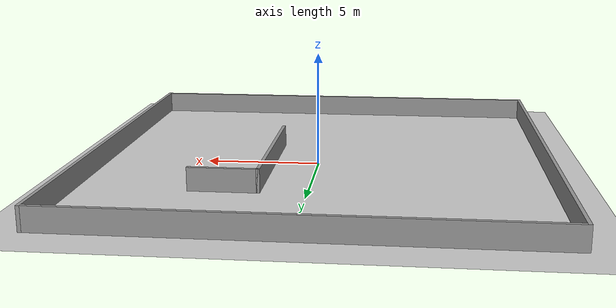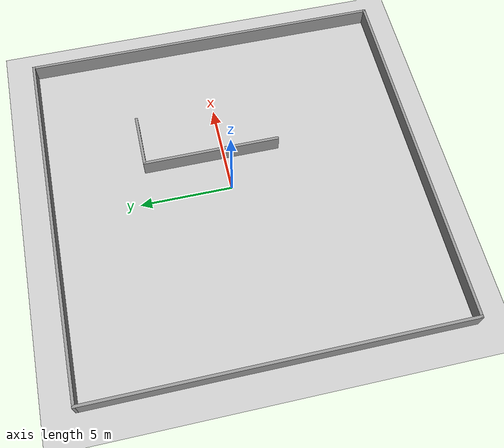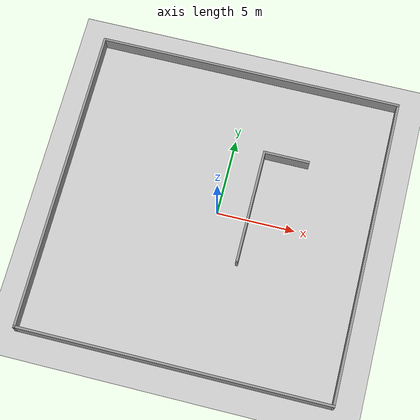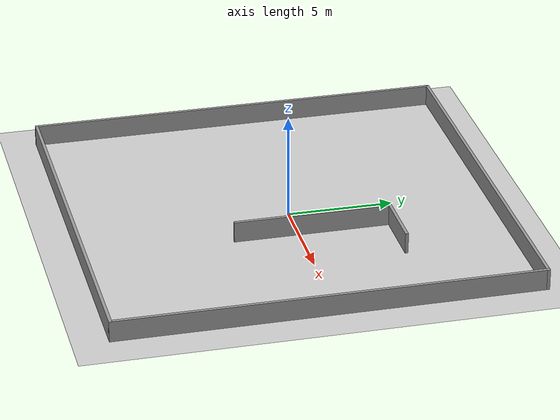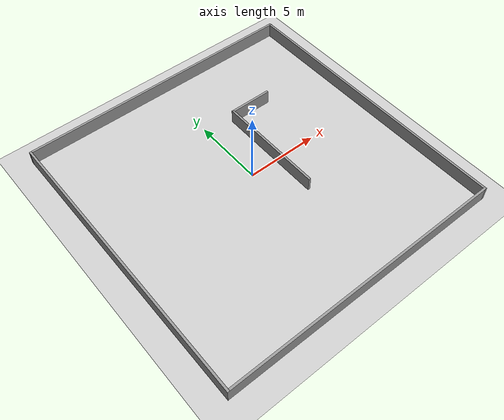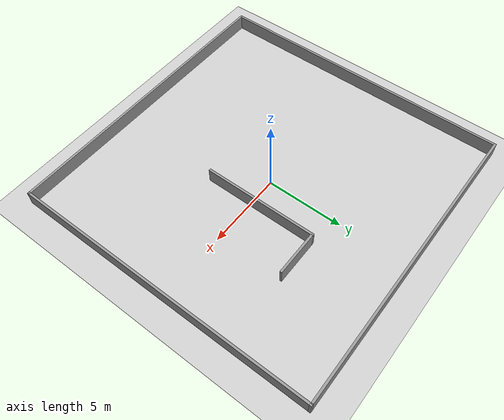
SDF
<?xml version="1.0"?>
<sdf version="1.5">
  <world name="default">
    <!-- A global light source -->
    <include>
      <uri>model://sun</uri>
    </include>
    <!-- A ground plane -->
    <include>
      <uri>model://ground_plane</uri>
    </include>

    <model name='house2'>
      <pose frame=''>-0.212 -0.32 0 0 -0 0</pose>
      <link name='Wall_0'>
        <collision name='Wall_0_Collision'>
          <geometry>
            <box>
              <size>7.5 0.15 1</size>
            </box>
          </geometry>
          <pose frame=''>0 0 0.5 0 -0 0</pose>
        </collision>
        <visual name='Wall_0_Visual'>
          <pose frame=''>0 0 0.5 0 -0 0</pose>
          <geometry>
            <box>
              <size>7.5 0.15 1</size>
            </box>
          </geometry>
          <material>
            <script>
              <uri>file://media/materials/scripts/gazebo.material</uri>
              <name>Gazebo/Grey</name>
            </script>
            <ambient>1 1 1 1</ambient>
          </material>
        </visual>
        <pose frame=''>2.192 1.015 0 0 -0 1.5708</pose>
      </link>
      <link name='Wall_1'>
        <collision name='Wall_1_Collision'>
          <geometry>
            <box>
              <size>3 0.15 1</size>
            </box>
          </geometry>
          <pose frame=''>0 0 0.5 0 -0 0</pose>
        </collision>
        <visual name='Wall_1_Visual'>
          <pose frame=''>0 0 0.5 0 -0 0</pose>
          <geometry>
            <box>
              <size>3 0.15 1</size>
            </box>
          </geometry>
          <material>
            <script>
              <uri>file://media/materials/scripts/gazebo.material</uri>
              <name>Gazebo/Grey</name>
            </script>
            <ambient>1 1 1 1</ambient>
          </material>
        </visual>
        <pose frame=''>3.617 4.69 0 0 -0 0</pose>
      </link>
      <link name='Wall_12'>
        <collision name='Wall_12_Collision'>
          <geometry>
            <box>
              <size>19.75 0.15 1</size>
            </box>
          </geometry>
          <pose frame=''>0 0 0.5 0 -0 0</pose>
        </collision>
        <visual name='Wall_12_Visual'>
          <pose frame=''>0 0 0.5 0 -0 0</pose>
          <geometry>
            <box>
              <size>19.75 0.15 1</size>
            </box>
          </geometry>
          <material>
            <script>
              <uri>file://media/materials/scripts/gazebo.material</uri>
              <name>Gazebo/Grey</name>
            </script>
            <ambient>1 1 1 1</ambient>
          </material>
        </visual>
        <pose frame=''>0 9.925 0 0 -0 3.14159</pose>
      </link>
      <link name='Wall_13'>
        <collision name='Wall_13_Collision'>
          <geometry>
            <box>
              <size>20 0.15 1</size>
            </box>
          </geometry>
          <pose frame=''>0 0 0.5 0 -0 0</pose>
        </collision>
        <visual name='Wall_13_Visual'>
          <pose frame=''>0 0 0.5 0 -0 0</pose>
          <geometry>
            <box>
              <size>20 0.15 1</size>
            </box>
          </geometry>
          <material>
            <script>
              <uri>file://media/materials/scripts/gazebo.material</uri>
              <name>Gazebo/Grey</name>
            </script>
            <ambient>1 1 1 1</ambient>
          </material>
        </visual>
        <pose frame=''>-9.8 0 0 0 0 -1.5708</pose>
      </link>
      <link name='Wall_15'>
        <collision name='Wall_15_Collision'>
          <geometry>
            <box>
              <size>19.75 0.15 1</size>
            </box>
          </geometry>
          <pose frame=''>0 0 0.5 0 -0 0</pose>
        </collision>
        <visual name='Wall_15_Visual'>
          <pose frame=''>0 0 0.5 0 -0 0</pose>
          <geometry>
            <box>
              <size>19.75 0.15 1</size>
            </box>
          </geometry>
          <material>
            <script>
              <uri>file://media/materials/scripts/gazebo.material</uri>
              <name>Gazebo/Grey</name>
            </script>
            <ambient>1 1 1 1</ambient>
          </material>
        </visual>
        <pose frame=''>0 -9.925 0 0 -0 0</pose>
      </link>
      <link name='Wall_17'>
        <collision name='Wall_17_Collision'>
          <geometry>
            <box>
              <size>20 0.15 1</size>
            </box>
          </geometry>
          <pose frame=''>0 0 0.5 0 -0 0</pose>
        </collision>
        <visual name='Wall_17_Visual'>
          <pose frame=''>0 0 0.5 0 -0 0</pose>
          <geometry>
            <box>
              <size>20 0.15 1</size>
            </box>
          </geometry>
          <material>
            <script>
              <uri>file://media/materials/scripts/gazebo.material</uri>
              <name>Gazebo/Grey</name>
            </script>
            <ambient>1 1 1 1</ambient>
          </material>
        </visual>
        <pose frame=''>9.8 0 0 0 -0 1.5708</pose>
      </link>
      <static>1</static>
    </model>
  </world>

</sdf>
